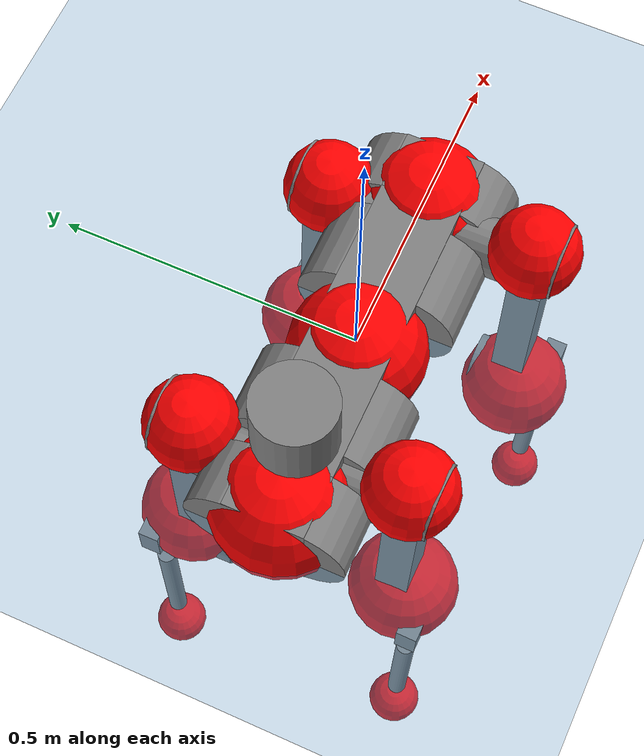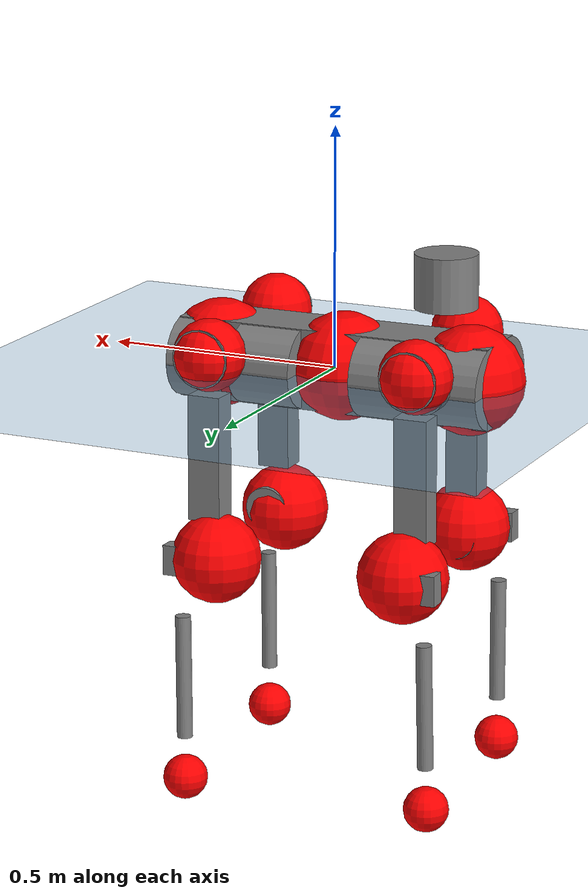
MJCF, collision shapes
<mujoco model="anymal_c">
  <compiler angle="radian" assetdir="assets" balanceinertia="true" inertiafromgeom="false"/>

  <option timestep="0.005" density="1.2" viscosity="2e-05"/>

  <size nkey="1"/>

  <visual>
    <quality shadowsize="8192"/>
    <map shadowclip="0.5"/>
  </visual>

  <default>
    <default class="/">
      <material specular="0" shininess="0.25"/>
      <geom contype="0" conaffinity="0" group="1" solref="-1000 -80"/>
      <site size="0.01 0.005 0.005" group="5"/>
      <general forcelimited="true" forcerange="-80 80" biastype="affine" gainprm="80" biasprm="0 -80 -2"/>
      <default class="anymal_c">
        <joint armature="0.01" damping="0.01" frictionloss="0.1"/>
        <default class="visual">
          <geom type="mesh" group="2"/>
          <default class="visual_zflip"/>
        </default>
        <default class="collision">
          <geom type="cylinder" group="3"/>
          <default class="foot">
            <geom size="0.03 0 0" type="sphere" condim="6" priority="1" friction="0.8 0.02 0.01" solimp="0.015 1 0.03"/>
          </default>
        </default>
      </default>
      <default class="reward_collision_sphere">
        <geom group="5" rgba="1 0 0 1"/>
      </default>
    </default>
  </default>

  <asset>
    <texture type="skybox" colorspace="auto" name="//unnamed_texture_0" builtin="gradient" rgb1="0.95 0.95 0.95" rgb2="0.95 0.95 0.95" width="100" height="600"/>
    <texture type="2d" colorspace="auto" name="texplane" builtin="checker" rgb1="0.345 0.575 0.748" rgb2="0.345 0.575 0.748" markrgb="1 1 1" width="512" height="512"/>
    <texture type="2d" colorspace="linear" name="base" file="base.png"/>
    <texture type="2d" colorspace="linear" name="top_shell" file="top_shell.png"/>
    <texture type="2d" colorspace="linear" name="bottom_shell" file="bottom_shell.png"/>
    <texture type="2d" colorspace="linear" name="remote" file="remote.png"/>
    <texture type="2d" colorspace="linear" name="hatch" file="hatch.png"/>
    <texture type="2d" colorspace="linear" name="handle" file="handle.png"/>
    <texture type="2d" colorspace="linear" name="face" file="face.png"/>
    <texture type="2d" colorspace="linear" name="battery" file="battery.png"/>
    <texture type="2d" colorspace="linear" name="lidar_cage" file="lidar_cage.png"/>
    <texture type="2d" colorspace="linear" name="depth_camera" file="depth_camera.png"/>
    <texture type="2d" colorspace="linear" name="wide_angle_camera" file="wide_angle_camera.png"/>
    <texture type="2d" colorspace="linear" name="lidar" file="lidar.png"/>
    <texture type="2d" colorspace="linear" name="drive" file="drive.png"/>
    <texture type="2d" colorspace="linear" name="hip_l" file="hip_l.png"/>
    <texture type="2d" colorspace="linear" name="shank_l" file="shank_l.png"/>
    <texture type="2d" colorspace="linear" name="foot" file="foot.png"/>
    <texture type="2d" colorspace="linear" name="thigh" file="thigh.png"/>
    <texture type="2d" colorspace="linear" name="shank_r" file="shank_r.png"/>
    <texture type="2d" colorspace="linear" name="hip_r" file="hip_r.png"/>
    <material name="MatPlane" class="/" texture="texplane" texuniform="true" texrepeat="2 2" specular="0.9" shininess="0.5"/>
    <material name="black_plastic" class="/" rgba="0.007 0.007 0.007 1"/>
    <material name="green" class="/" rgba="0.052 0.178 0.033 1"/>
    <material name="red" class="/" rgba="0.178 0.006 0.005 1"/>
    <material name="yellow" class="/" rgba="0.178 0.119 0.006 1"/>
    <material name="lwl" class="/" rgba="0.8 0.8 0.8 1"/>
    <material name="base" class="/" texture="base"/>
    <material name="top_shell" class="/" texture="top_shell"/>
    <material name="bottom_shell" class="/" texture="bottom_shell"/>
    <material name="hip_l" class="/" texture="hip_l"/>
    <material name="thigh" class="/" texture="thigh"/>
    <material name="shank_l" class="/" texture="shank_l"/>
    <material name="foot" class="/" texture="foot"/>
    <material name="hip_r" class="/" texture="hip_r"/>
    <material name="shank" class="/" texture="shank_r"/>
    <material name="hatch" class="/" texture="hatch"/>
    <material name="remote" class="/" texture="remote"/>
    <material name="handle" class="/" texture="handle"/>
    <material name="face" class="/" texture="face"/>
    <material name="depth_camera" class="/" texture="depth_camera"/>
    <material name="wide_angle_camera" class="/" texture="wide_angle_camera"/>
    <material name="battery" class="/" texture="battery"/>
    <material name="lidar_cage" class="/" texture="lidar_cage"/>
    <material name="lidar" class="/" texture="lidar"/>
    <material name="drive" class="/" texture="drive"/>
    <mesh name="base_0" class="/" file="base_0.obj"/>
    <mesh name="base_1" class="/" file="base_1.obj"/>
    <mesh name="base_2" class="/" file="base_2.obj"/>
    <mesh name="base_3" class="/" file="base_3.obj"/>
    <mesh name="base_4" class="/" file="base_4.obj"/>
    <mesh name="base_5" class="/" file="base_5.obj"/>
    <mesh name="top_shell" class="/" file="top_shell.obj"/>
    <mesh name="bottom_shell" class="/" file="bottom_shell.obj"/>
    <mesh name="remote" class="/" file="remote.obj"/>
    <mesh name="handle" class="/" file="handle.obj"/>
    <mesh name="face" class="/" file="face.obj"/>
    <mesh name="wide_angle_camera" class="/" file="wide_angle_camera.obj"/>
    <mesh name="depth_camera" class="/" file="depth_camera.obj"/>
    <mesh name="battery" class="/" file="battery.obj"/>
    <mesh name="lidar_cage" class="/" file="lidar_cage.obj"/>
    <mesh name="lidar" class="/" file="lidar.obj"/>
    <mesh name="drive" class="/" file="drive.obj"/>
    <mesh name="hip_l" class="/" file="hip_l.obj"/>
    <mesh name="thigh" class="/" file="thigh.obj"/>
    <mesh name="shank_l" class="/" file="shank_l.obj"/>
    <mesh name="foot" class="/" file="foot.obj"/>
    <mesh name="hip_r" class="/" file="hip_r.obj"/>
    <mesh name="hatch" class="/" file="hatch.obj"/>
    <mesh name="shank_r" class="/" file="shank_r.obj"/>
  </asset>

  <worldbody>
    <geom name="floor" class="/" size="100 100 0.125" type="plane" group="0" material="MatPlane"/>
    <light name="toplight_shadow" class="/" pos="0 0 5" dir="0.0990148 0.0990148 -0.990148" type="directional" ambient="0.04 0.04 0.04" diffuse="0.55 0.55 0.55" specular="0.12 0.12 0.12"/>
    <light name="toplight_fill" class="/" pos="0 0 5" dir="0.0990148 0.0990148 -0.990148" type="directional" castshadow="false" ambient="0.04 0.04 0.04" diffuse="0.3 0.3 0.3" specular="0.08 0.08 0.08"/>
    <body name="trunk" childclass="anymal_c" pos="-0.0165554 -0.00980285 0.00483016" quat="0.999993 -0.00280756 0.00262372 -0.000318802">
      <inertial pos="0.00108639 0.0048109 0.0756099" quat="0.529516 0.524949 0.481515 0.460635" mass="15.3143" diaginertia="0.0369887 0.0603704 1.5809"/>
      <joint name="//unnamed_joint_0" type="free" armature="0" damping="0" frictionloss="0"/>
      <geom name="//unnamed_geom_1" class="visual" material="green" mesh="base_0"/>
      <geom name="//unnamed_geom_2" class="visual" material="yellow" mesh="base_1"/>
      <geom name="//unnamed_geom_3" class="visual" material="red" mesh="base_2"/>
      <geom name="//unnamed_geom_4" class="visual" material="black_plastic" mesh="base_3"/>
      <geom name="//unnamed_geom_5" class="visual" material="lwl" mesh="base_4"/>
      <geom name="//unnamed_geom_6" class="visual" material="base" mesh="base_5"/>
      <geom name="trunk_1" class="collision" size="0.270563 0.0653083 0.0839678" type="box"/>
      <geom name="trunk_2" class="collision" size="0.0839678 0.0676407" pos="0.134541 0.047431 0" quat="0.707107 0 0.707107 0"/>
      <geom name="trunk_3" class="collision" size="0.0839678 0.0676407" pos="-0.134541 0.047431 0" quat="0.707107 0 0.707107 0"/>
      <geom name="trunk_4" class="collision" size="0.0839678 0.0676407" pos="0.134541 -0.047431 0" quat="0.707107 0 0.707107 0"/>
      <geom name="trunk_5" class="collision" size="0.0839678 0.0676407" pos="-0.134541 -0.047431 0" quat="0.707107 0 0.707107 0"/>
      <geom name="//unnamed_geom_12" class="visual" material="top_shell" mesh="top_shell"/>
      <geom name="//unnamed_geom_13" class="visual" material="bottom_shell" mesh="bottom_shell"/>
      <geom name="//unnamed_geom_14" class="visual" material="remote" mesh="remote"/>
      <geom name="//unnamed_geom_15" class="visual" material="handle" mesh="handle"/>
      <geom name="//unnamed_geom_16" class="visual" pos="0.256401 0 0" quat="1 0 0 0" material="face" mesh="face"/>
      <geom name="trunk_6" class="collision" size="0.0513137 0.0653083 0.0839678" pos="0.290423 0 0" type="box"/>
      <geom name="//unnamed_geom_18" class="collision" size="0.0839678 0.0513137" pos="0.290423 0.047431 0" quat="0.707107 0 0.707107 0"/>
      <geom name="//unnamed_geom_19" class="collision" size="0.0839678 0.0513137" pos="0.290423 -0.047431 0" quat="0.707107 0 0.707107 0"/>
      <geom name="//unnamed_geom_20" class="visual" pos="0.285604 0 -0.0506004" quat="0.965926 0 0.258819 0" material="depth_camera" mesh="depth_camera"/>
      <geom name="//unnamed_geom_21" class="visual" pos="0.317331 0 0.0224963" material="wide_angle_camera" mesh="wide_angle_camera"/>
      <geom name="//unnamed_geom_22" class="visual_zflip" pos="-0.256401 0 0" quat="0 0 0 1" material="face" mesh="face"/>
      <geom name="trunk_7" class="collision" size="0.0513137 0.0653083 0.0839678" pos="-0.290423 0 0" quat="0 0 0 1" type="box"/>
      <geom name="//unnamed_geom_24" class="collision" size="0.0839678 0.0513137" pos="-0.290423 -0.047431 0" quat="0 -0.707107 0 0.707107"/>
      <geom name="//unnamed_geom_25" class="collision" size="0.0839678 0.0513137" pos="-0.290423 0.047431 0" quat="0 -0.707107 0 0.707107"/>
      <geom name="//unnamed_geom_26" class="visual" pos="-0.285604 0 -0.0506004" quat="0 -0.258819 0 0.965926" material="depth_camera" mesh="depth_camera"/>
      <geom name="//unnamed_geom_27" class="visual_zflip" pos="-0.317331 0 0.0224963" quat="0 0 0 1" material="wide_angle_camera" mesh="wide_angle_camera"/>
      <geom name="//unnamed_geom_28" class="visual" material="battery" mesh="battery"/>
      <geom name="//unnamed_geom_29" class="visual" pos="0 0.0526192 0.0369354" quat="0.683013 -0.183013 0.183013 0.683013" material="depth_camera" mesh="depth_camera"/>
      <geom name="//unnamed_geom_30" class="visual" pos="0 -0.0526192 0.0369354" quat="0.683013 0.183013 0.183013 -0.683013" material="depth_camera" mesh="depth_camera"/>
      <geom name="//unnamed_geom_31" class="visual" pos="-0.225163 0 0.110453" quat="1 0 0 0" material="lidar_cage" mesh="lidar_cage"/>
      <geom name="trunk_8" class="collision" size="0.0653083 0.0559785" pos="-0.225163 0 0.200619"/>
      <geom name="//unnamed_geom_33" class="visual" pos="-0.225163 2.3182e-05 0.213693" quat="0.707107 0 0 -0.707107" material="lidar" mesh="lidar"/>
      <geom name="//unnamed_geom_34" class="visual" pos="0.185512 0.0707621 -1.42344e-08" quat="0.258819 0.965926 0 0" material="drive" mesh="drive"/>
      <geom name="//unnamed_geom_35" class="visual" pos="0.185512 -0.0707621 1.42344e-08" quat="0.258819 -0.965926 0 0" material="drive" mesh="drive"/>
      <geom name="//unnamed_geom_36" class="visual" pos="-0.185512 0.0707621 1.42344e-08" quat="0 0 0.965926 -0.258819" material="drive" mesh="drive"/>
      <geom name="//unnamed_geom_37" class="visual" pos="-0.185512 -0.0707621 -1.42344e-08" quat="0 0 -0.965926 -0.258819" material="drive" mesh="drive"/>
      <geom name="//unnamed_geom_38" class="visual" pos="0.0717552 0 0.109702" quat="1 0 0 0" material="hatch" mesh="hatch"/>
      <geom name="//unnamed_geom_39" class="reward_collision_sphere" size="0.111957"/>
      <geom name="//unnamed_geom_40" class="reward_collision_sphere" size="0.111957" pos="0.278361 0 0"/>
      <geom name="//unnamed_geom_41" class="reward_collision_sphere" size="0.111957" pos="-0.278361 0 0"/>
      <site name="imu" pos="0.112987 0.0358785 0.159891" size="0.00932975"/>
      <camera name="track" pos="0 -1.35517 0" quat="0.707107 0.707107 0 0" mode="trackcom"/>
      <camera name="ego_camera" pos="0.278361 0 -0.0601104" quat="-0.5 -0.5 0.5 0.5"/>
      <body name="LF_HIP" pos="0.180938 0.0683331 0.0121834" quat="0.25242 0.967609 -0.00263447 -0.00324763">
        <inertial pos="0.0525428 -0.000347135 -0.00949101" quat="-0.117571 0.708848 -0.142176 0.680807" mass="2.58856" diaginertia="0.000607118 0.000866517 0.0283953"/>
        <joint name="LF_HAA" pos="0 0 0" axis="0.99528 -0.07365 -0.0631993" stiffness="0.0835155" range="-0.621675 0.484173" armature="0.0171121" damping="0" frictionloss="0.0416738"/>
        <geom name="//unnamed_geom_42" class="visual" pos="0 -0.000837343 0.000137533" quat="0.258819 -0.965926 0 0" material="hip_l" mesh="hip_l"/>
        <geom name="//unnamed_geom_43" class="visual" pos="0.0370529 -0.0459675 -0.0326428" quat="0.183013 -0.683013 0.683013 0.183013" material="drive" mesh="drive"/>
        <geom name="//unnamed_geom_44" class="collision" size="0.0466488 0.0653083" pos="0.0370529 -0.00810379 -0.0103766" quat="-0.353553 -0.612372 0.612372 -0.353553"/>
        <body name="LF_THIGH" pos="0.0500141 -0.0473088 -0.0512752" quat="0.184409 -0.681294 0.683084 0.18769">
          <inertial pos="0.0237522 0.000293567 -0.350632" quat="0.986005 -0.0282103 -0.120621 0.111578" mass="2.62839" diaginertia="0.00291014 0.00479722 0.0374054"/>
          <joint name="LF_HFE" pos="0 0 0" axis="0.998327 -0.000130757 -0.0578183" stiffness="0.0633316" range="-3.34516 3.16108" armature="0.00136654" damping="0.0618444" frictionloss="0.149868"/>
          <geom name="//unnamed_geom_45" class="visual" pos="-0.001174 -1.84994e-06 0" quat="0.707107 0 0 -0.707107" material="thigh" mesh="thigh"/>
          <geom name="//unnamed_geom_46" class="collision" size="0.0606434 0.037319" pos="0.0247432 0 0" quat="0.5 0.5 -0.5 -0.5"/>
          <geom name="//unnamed_geom_47" class="collision" size="0.0349866 0.0279893 0.131842" pos="0.0185574 0 -0.212361" quat="0.707107 0 0 -0.707107" type="box"/>
          <geom name="//unnamed_geom_48" class="visual" pos="0.0620435 0 -0.428287" quat="1 0 0 0" material="drive" mesh="drive"/>
          <geom name="//unnamed_geom_49" class="collision" size="0.0466488 0.0653083" pos="0.018743 0 -0.428287" quat="0.707107 0 0.707107 0"/>
          <geom name="//unnamed_geom_50" class="reward_collision_sphere" size="0.074638" pos="0.0154645 0 0"/>
          <body name="LF_SHANK" pos="0.0582837 0.0189793 -0.424081" quat="0.999976 0.00455272 -0.000679216 -0.00518848">
            <inertial pos="-0.00755628 -0.0339429 -0.119009" quat="0.982726 -0.154703 0.0236932 -0.0987645" mass="0.340224" diaginertia="0.000917525 0.00107919 0.00865917"/>
            <joint name="LF_KFE" pos="0 0 0" axis="0.998962 -0.0120916 0.0439163" range="-3.20044 3.26732" armature="0.00726307" damping="0.0708762" frictionloss="0.06857"/>
            <geom name="//unnamed_geom_51" class="visual" pos="-0.000382814 -0.00204119 0" quat="0.707107 0 0 -0.707107" material="shank_l" mesh="shank_l"/>
            <geom name="LF_kfe_act" class="collision" size="0.0559785 0.0186595" pos="0.0123716 0 0" quat="0.5 0.5 -0.5 -0.5"/>
            <geom name="//unnamed_geom_53" class="collision" size="0.0536452 0.0314879 0.0177265" pos="0.0123716 -0.0389605 0" quat="0.5 0.5 -0.5 -0.5" type="box"/>
            <geom name="//unnamed_geom_54" class="visual" pos="0.00807255 -0.0602515 -0.507888" quat="0.382683 0 0 -0.92388" material="foot" mesh="foot"/>
            <geom name="LF_calf" class="collision" size="0.0163271 0.131785" pos="0.00807246 -0.0595937 -0.253944" quat="0.707107 0 0 -0.707107"/>
            <geom name="LF_foot" class="foot" size="0.0134423" pos="0.00807246 -0.0595937 -0.474076" quat="0.707107 0 0 -0.707107"/>
            <geom name="//unnamed_geom_57" class="reward_collision_sphere" size="0.0932975" pos="-0.030929 0 0"/>
            <geom name="//unnamed_geom_58" class="reward_collision_sphere" size="0.0466488" pos="0.00807246 -0.0595937 -0.474076"/>
            <site name="LF_foot" class="foot" pos="0.00807246 -0.0595937 -0.474076" quat="0.707107 0 0 -0.707107" size="0.00932975"/>
          </body>
        </body>
      </body>
      <body name="RF_HIP" pos="0.20422 -0.0887094 0.0153077" quat="0.259207 -0.965819 -0.00215047 1.67449e-05">
        <inertial pos="0.0167931 0.002209 0.00461701" quat="0.173374 0.649554 0.0952997 0.734124" mass="1.62086" diaginertia="0.000436094 0.00063647 0.0195907"/>
        <joint name="RF_HAA" pos="0 0 0" axis="0.99667 0.0595123 -0.0557508" range="-0.143866 0.602634" armature="0.0089022" damping="0" frictionloss="0.166083"/>
        <geom name="//unnamed_geom_59" class="visual" pos="0 0.000837337 0.000137533" quat="0.258819 0.965926 0 0" material="hip_r" mesh="hip_r"/>
        <geom name="//unnamed_geom_60" class="visual" pos="0.0370529 0.0459675 -0.0326428" quat="0.183013 0.683013 0.683013 -0.183013" material="drive" mesh="drive"/>
        <geom name="//unnamed_geom_61" class="collision" size="0.0466488 0.0653083" pos="0.0370529 0.00810379 -0.0103766" quat="-0.353553 0.612372 0.612372 0.353553"/>
        <body name="RF_THIGH" pos="0.039428 0.0577258 -0.0752694" quat="0.182764 0.684017 0.682127 -0.182814">
          <inertial pos="0.0304439 -0.0194552 -0.377357" quat="0.992839 -0.0020147 -0.0861403 0.0827404" mass="2.2256" diaginertia="0.00266559 0.00348429 0.0287861"/>
          <joint name="RF_HFE" pos="0 0 0" axis="0.998946 -0.0403694 0.0218572" range="-3.02388 2.91513" armature="0.013611" damping="0.0727515" frictionloss="0.0609129"/>
          <geom name="//unnamed_geom_62" class="visual" pos="-0.001174 -1.84994e-06 0" quat="0.707107 0 0 -0.707107" material="thigh" mesh="thigh"/>
          <geom name="//unnamed_geom_63" class="collision" size="0.0606434 0.037319" pos="0.0247432 0 0" quat="0.5 0.5 0.5 0.5"/>
          <geom name="//unnamed_geom_64" class="collision" size="0.0349866 0.0279893 0.131842" pos="0.0185574 0 -0.212361" quat="0.707107 0 0 0.707107" type="box"/>
          <geom name="//unnamed_geom_65" class="visual" pos="0.0620435 0 -0.428287" quat="1 0 0 0" material="drive" mesh="drive"/>
          <geom name="//unnamed_geom_66" class="collision" size="0.0466488 0.0653083" pos="0.018743 0 -0.428287" quat="0.707107 0 0.707107 0"/>
          <geom name="//unnamed_geom_67" class="reward_collision_sphere" size="0.074638" pos="0.0154645 0 0"/>
          <body name="RF_SHANK" pos="0.0639912 -0.00842888 -0.444068" quat="0.999958 -0.00278896 0.00673441 -0.00563043">
            <inertial pos="-0.0162291 0.0546027 -0.136798" quat="0.993154 0.116508 -0.00127387 -0.00828762" mass="0.616301" diaginertia="0.00085208 0.00113921 0.00711851"/>
            <joint name="RF_KFE" pos="0 0 0" axis="0.999078 0.040469 0.0143631" range="-2.78808 3.23415" armature="0.00619686" damping="0" frictionloss="0.0171445"/>
            <geom name="//unnamed_geom_68" class="visual" pos="-0.000382812 0.00204118 0" quat="0.707107 0 0 0.707107" material="shank" mesh="shank_r"/>
            <geom name="RF_kfe_act" class="collision" size="0.0559785 0.0186595" pos="0.0123716 0 0" quat="0.5 0.5 0.5 0.5"/>
            <geom name="//unnamed_geom_70" class="collision" size="0.0536452 0.0314879 0.0177265" pos="0.0123716 0.0389605 0" quat="0.5 0.5 0.5 0.5" type="box"/>
            <geom name="//unnamed_geom_71" class="visual" pos="0.00807237 0.0602515 -0.507888" quat="0.382683 0 0 0.92388" material="foot" mesh="foot"/>
            <geom name="RF_calf" class="collision" size="0.0163271 0.131785" pos="0.00807246 0.0595937 -0.253944" quat="0.707107 0 0 0.707107"/>
            <geom name="RF_foot" class="foot" size="0.0277028" pos="0.00807246 0.0595937 -0.474076" quat="0.707107 0 0 0.707107"/>
            <geom name="//unnamed_geom_74" class="reward_collision_sphere" size="0.0932975" pos="-0.030929 0 0"/>
            <geom name="//unnamed_geom_75" class="reward_collision_sphere" size="0.0466488" pos="0.00807246 0.0595937 -0.474076"/>
            <site name="RF_foot" class="foot" pos="0.00807246 0.0595937 -0.474076" quat="0.707107 0 0 0.707107" size="0.00932975"/>
          </body>
        </body>
      </body>
      <body name="LH_HIP" pos="-0.205384 0.0867425 0.00683617" quat="0.00181476 -0.00364124 0.966198 -0.257771">
        <inertial pos="0.0174108 0.0296383 -0.0146349" quat="0.126021 0.729222 0.0822251 0.667527" mass="2.64963" diaginertia="0.00060244 0.000708892 0.0311757"/>
        <joint name="LH_HAA" pos="0 0 0" axis="0.998621 0.0516141 -0.00955603" range="-0.763002 0.525641" armature="0.008973" damping="0.00547673" frictionloss="0.136193"/>
        <geom name="//unnamed_geom_76" class="visual" pos="0 0.000837337 0.000137533" quat="-0.258819 -0.965926 0 0" material="hip_r" mesh="hip_r"/>
        <geom name="//unnamed_geom_77" class="visual" pos="0.0370529 0.0459675 -0.0326428" quat="0.183013 0.683013 0.683013 -0.183013" material="drive" mesh="drive"/>
        <geom name="//unnamed_geom_78" class="collision" size="0.0466488 0.0653083" pos="0.0370529 0.00810379 -0.0103766" quat="-0.353553 0.612372 0.612372 0.353553"/>
        <body name="LH_THIGH" pos="0.0252538 0.039493 -0.0643494" quat="0.181937 0.686438 0.680266 -0.181495">
          <inertial pos="0.0117971 -0.018008 -0.373639" quat="0.982475 0.00165197 -0.0970244 0.159142" mass="1.87051" diaginertia="0.00263925 0.00332024 0.0327248"/>
          <joint name="LH_HFE" pos="0 0 0" axis="0.996407 0.0840401 0.0104864" stiffness="0.070096" range="-3.41268 2.88331" armature="0.00177146" damping="0" frictionloss="0.0200887"/>
          <geom name="//unnamed_geom_79" class="visual" pos="-0.001174 -1.84994e-06 0" quat="0.707107 0 0 -0.707107" material="thigh" mesh="thigh"/>
          <geom name="//unnamed_geom_80" class="collision" size="0.0606434 0.037319" pos="0.0247432 0 0" quat="0.5 0.5 -0.5 -0.5"/>
          <geom name="//unnamed_geom_81" class="collision" size="0.0349866 0.0279893 0.131842" pos="0.0185574 0 -0.212361" quat="0.707107 0 0 -0.707107" type="box"/>
          <geom name="//unnamed_geom_82" class="visual" pos="0.0620435 0 -0.428287" quat="1 0 0 0" material="drive" mesh="drive"/>
          <geom name="//unnamed_geom_83" class="collision" size="0.0466488 0.0653083" pos="0.018743 0 -0.428287" quat="0.707107 0 0.707107 0"/>
          <geom name="//unnamed_geom_84" class="reward_collision_sphere" size="0.074638" pos="0.0154645 0 0"/>
          <body name="LH_SHANK" pos="0.074775 -0.015295 -0.409576" quat="0.999955 0.0061221 0.00501442 -0.00517276">
            <inertial pos="-0.00197976 0.0424433 -0.140941" quat="0.996162 0.0837046 0.0145961 -0.0210178" mass="0.559704" diaginertia="0.000930449 0.00144459 0.00790439"/>
            <joint name="LH_KFE" pos="0 0 0" axis="0.998798 -0.042817 0.0238701" stiffness="0.0537623" range="-3.29456 3.39846" armature="0.00601161" damping="0" frictionloss="0.16237"/>
            <geom name="//unnamed_geom_85" class="visual" pos="-0.000382812 0.00204118 0" quat="-0.707107 0 0 -0.707107" material="shank" mesh="shank_r"/>
            <geom name="LH_kfe_act" class="collision" size="0.0559785 0.0186595" pos="0.0123716 0 0" quat="0.5 0.5 -0.5 -0.5"/>
            <geom name="//unnamed_geom_87" class="collision" size="0.0536452 0.0314879 0.0177265" pos="0.0123716 0.0389605 0" quat="0.5 0.5 -0.5 -0.5" type="box"/>
            <geom name="//unnamed_geom_88" class="visual" pos="0.00807237 0.0602515 -0.507888" quat="-0.382683 0 0 -0.92388" material="foot" mesh="foot"/>
            <geom name="LH_calf" class="collision" size="0.0163271 0.131785" pos="0.00807246 0.0595937 -0.253944" quat="0.707107 0 0 -0.707107"/>
            <geom name="LH_foot" class="foot" size="0.0440345" pos="0.00807246 0.0595937 -0.474076" quat="0.707107 0 0 -0.707107"/>
            <geom name="//unnamed_geom_91" class="reward_collision_sphere" size="0.0932975" pos="-0.030929 0 0"/>
            <geom name="//unnamed_geom_92" class="reward_collision_sphere" size="0.0466488" pos="0.00807246 0.0595937 -0.474076"/>
            <site name="LH_foot" class="foot" pos="0.00807246 0.0595937 -0.474076" quat="0.707107 0 0 -0.707107" size="0.00932975"/>
          </body>
        </body>
      </body>
      <body name="RH_HIP" pos="-0.167756 -0.0806825 0.00563127" quat="-0.000794241 -0.0019485 -0.964844 -0.262816">
        <inertial pos="0.0209676 -0.0219675 -0.0148495" quat="-0.210951 0.710809 -0.106524 0.662498" mass="2.414" diaginertia="0.000487981 0.000636953 0.022995"/>
        <joint name="RH_HAA" pos="0 0 0" axis="0.995812 0.0335066 0.0850686" stiffness="0.0324398" range="-0.754353 0.311736" armature="0.0143599" damping="0" frictionloss="0.0768566"/>
        <geom name="//unnamed_geom_93" class="visual" pos="0 -0.000837343 0.000137533" quat="-0.258819 0.965926 0 0" material="hip_l" mesh="hip_l"/>
        <geom name="//unnamed_geom_94" class="visual" pos="0.0370529 -0.0459675 -0.0326428" quat="-0.183013 0.683013 -0.683013 -0.183013" material="drive" mesh="drive"/>
        <geom name="//unnamed_geom_95" class="collision" size="0.0466488 0.0653083" pos="0.0370529 -0.00810379 -0.0103766" quat="0.353553 0.612372 -0.612372 0.353553"/>
        <body name="RH_THIGH" pos="0.0314568 -0.0412873 -0.0794966" quat="-0.179151 0.684662 -0.68301 -0.180666">
          <inertial pos="0.0111535 0.00456461 -0.377805" quat="0.989609 -0.0891696 -0.0409992 0.10508" mass="2.62997" diaginertia="0.00277063 0.00330991 0.0234314"/>
          <joint name="RH_HFE" pos="0 0 0" axis="0.999203 0.0137279 -0.0374729" stiffness="0.0694381" range="-3.20474 2.95392" armature="0.00281508" damping="0.0827668" frictionloss="0.145572"/>
          <geom name="//unnamed_geom_96" class="visual" pos="-0.001174 -1.84994e-06 0" quat="0.707107 0 0 -0.707107" material="thigh" mesh="thigh"/>
          <geom name="//unnamed_geom_97" class="collision" size="0.0606434 0.037319" pos="0.0247432 0 0" quat="0.5 0.5 0.5 0.5"/>
          <geom name="//unnamed_geom_98" class="collision" size="0.0349866 0.0279893 0.131842" pos="0.0185574 0 -0.212361" quat="0.707107 0 0 0.707107" type="box"/>
          <geom name="//unnamed_geom_99" class="visual" pos="0.0620435 0 -0.428287" quat="1 0 0 0" material="drive" mesh="drive"/>
          <geom name="//unnamed_geom_100" class="collision" size="0.0466488 0.0653083" pos="0.018743 0 -0.428287" quat="0.707107 0 0.707107 0"/>
          <geom name="//unnamed_geom_101" class="reward_collision_sphere" size="0.074638" pos="0.0154645 0 0"/>
          <body name="RH_SHANK" pos="0.0608422 0.00353963 -0.423228" quat="0.999999 2.33378e-05 0.000348774 -0.00150923">
            <inertial pos="0.019764 -0.0230292 -0.138835" quat="0.991327 -0.131144 -0.00153814 -0.0083987" mass="0.40958" diaginertia="0.00114528 0.0011255 0.00892314"/>
            <joint name="RH_KFE" pos="0 0 0" axis="0.999062 0.00923422 -0.0422977" stiffness="0.0318228" range="-2.95305 2.78702" armature="0.00859504" damping="0" frictionloss="0.00981334"/>
            <geom name="//unnamed_geom_102" class="visual" pos="-0.000382814 -0.00204119 0" quat="0.707107 0 0 -0.707107" material="shank_l" mesh="shank_l"/>
            <geom name="RH_kfe_act" class="collision" size="0.0559785 0.0186595" pos="0.0123716 0 0" quat="0.5 0.5 0.5 0.5"/>
            <geom name="//unnamed_geom_104" class="collision" size="0.0536452 0.0314879 0.0177265" pos="0.0123716 -0.0389605 0" quat="0.5 0.5 0.5 0.5" type="box"/>
            <geom name="//unnamed_geom_105" class="visual" pos="0.00807255 -0.0602515 -0.507888" quat="0.382683 0 0 -0.92388" material="foot" mesh="foot"/>
            <geom name="RH_calf" class="collision" size="0.0163271 0.131785" pos="0.00807246 -0.0595937 -0.253944" quat="0.707107 0 0 0.707107"/>
            <geom name="RH_foot" class="foot" size="0.00975584" pos="0.00807246 -0.0595937 -0.474076" quat="0.707107 0 0 0.707107"/>
            <geom name="//unnamed_geom_108" class="reward_collision_sphere" size="0.0932975" pos="-0.030929 0 0"/>
            <geom name="//unnamed_geom_109" class="reward_collision_sphere" size="0.0466488" pos="0.00807246 -0.0595937 -0.474076"/>
            <site name="RH_foot" class="foot" pos="0.00807246 -0.0595937 -0.474076" quat="0.707107 0 0 0.707107" size="0.00932975"/>
          </body>
        </body>
      </body>
    </body>
  </worldbody>

  <contact>
    <pair class="/" geom1="floor" geom2="LF_foot" name="//unnamed_contact_0"/>
    <pair class="/" geom1="floor" geom2="RF_foot" name="//unnamed_contact_1"/>
    <pair class="/" geom1="floor" geom2="LH_foot" name="//unnamed_contact_2"/>
    <pair class="/" geom1="floor" geom2="RH_foot" name="//unnamed_contact_3"/>
  </contact>

  <actuator>
    <general name="LF_HAA" class="/" joint="LF_HAA" forcerange="-73.23 73.23" gainprm="71.22" biasprm="0 -71.22 -1.45918"/>
    <general name="LF_HFE" class="/" joint="LF_HFE" forcerange="-118.473 118.473" gainprm="71.22" biasprm="0 -71.22 -1.45918"/>
    <general name="LF_KFE" class="/" joint="LF_KFE" forcerange="-45.9107 45.9107" gainprm="71.22" biasprm="0 -71.22 -1.45918"/>
    <general name="RF_HAA" class="/" joint="RF_HAA" forcerange="-71.0917 71.0917" gainprm="71.22" biasprm="0 -71.22 -1.45918"/>
    <general name="RF_HFE" class="/" joint="RF_HFE" forcerange="-58.4098 58.4098" gainprm="71.22" biasprm="0 -71.22 -1.45918"/>
    <general name="RF_KFE" class="/" joint="RF_KFE" forcerange="-39.974 39.974" gainprm="71.22" biasprm="0 -71.22 -1.45918"/>
    <general name="LH_HAA" class="/" joint="LH_HAA" forcerange="-71.6881 71.6881" gainprm="71.22" biasprm="0 -71.22 -1.45918"/>
    <general name="LH_HFE" class="/" joint="LH_HFE" forcerange="-38.9943 38.9943" gainprm="71.22" biasprm="0 -71.22 -1.45918"/>
    <general name="LH_KFE" class="/" joint="LH_KFE" forcerange="-108.114 108.114" gainprm="71.22" biasprm="0 -71.22 -1.45918"/>
    <general name="RH_HAA" class="/" joint="RH_HAA" forcerange="-87.4931 87.4931" gainprm="71.22" biasprm="0 -71.22 -1.45918"/>
    <general name="RH_HFE" class="/" joint="RH_HFE" forcerange="-50.358 50.358" gainprm="71.22" biasprm="0 -71.22 -1.45918"/>
    <general name="RH_KFE" class="/" joint="RH_KFE" forcerange="-127.605 127.605" gainprm="71.22" biasprm="0 -71.22 -1.45918"/>
  </actuator>

  <sensor>
    <gyro site="imu" name="imu_angular_velocity"/>
    <velocimeter site="imu" name="imu_linear_velocity"/>
    <framelinvel objtype="site" objname="LF_foot" name="LF_foot_global_linear_velocity"/>
    <framelinvel objtype="site" objname="RF_foot" name="RF_foot_global_linear_velocity"/>
    <framelinvel objtype="site" objname="LH_foot" name="LH_foot_global_linear_velocity"/>
    <framelinvel objtype="site" objname="RH_foot" name="RH_foot_global_linear_velocity"/>
  </sensor>

  <keyframe>
    <key name="home" qpos="0 0 0.55 1 0 0 0 0 0.4 -0.8 0 -0.4 0.8 0 -0.4 0.8 0 0.4 -0.8"/>
  </keyframe>
</mujoco>
